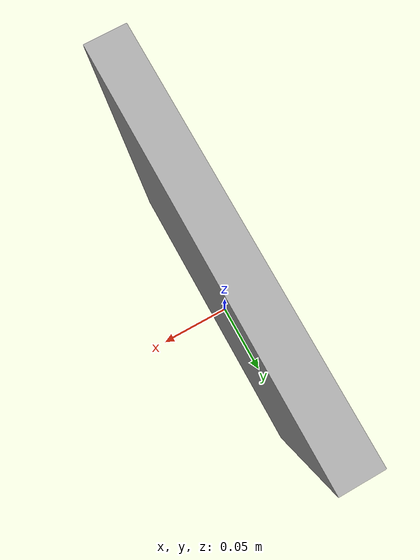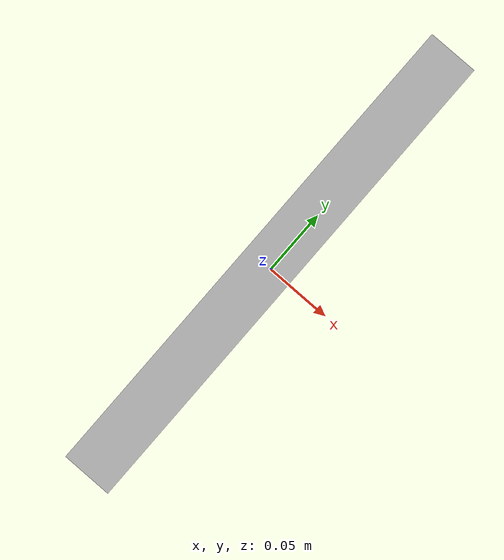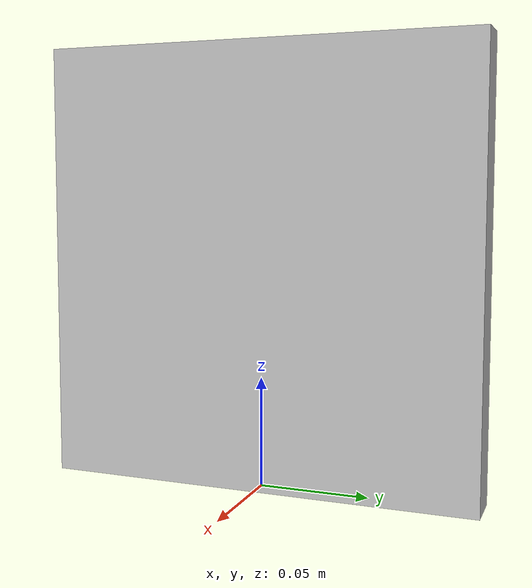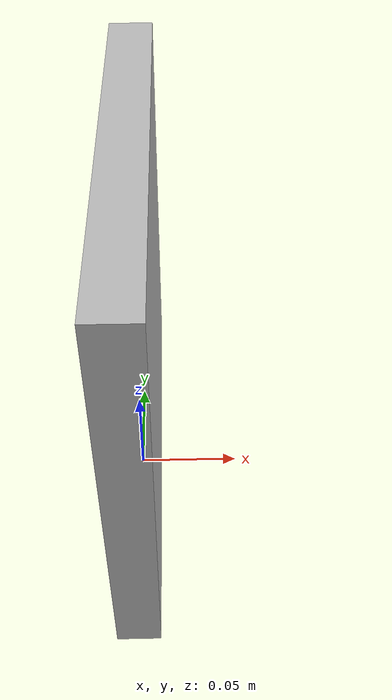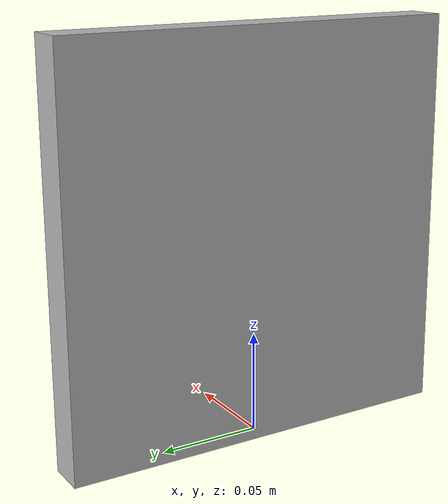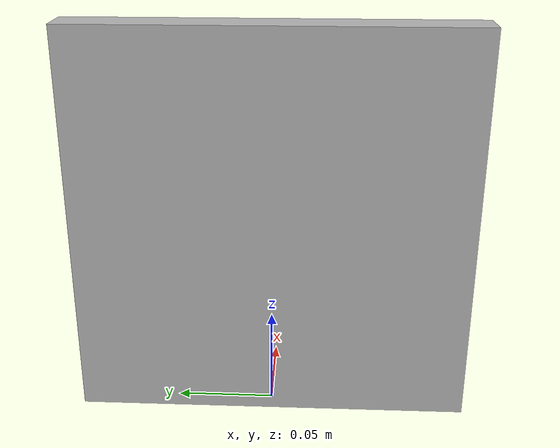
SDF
<?xml version="1.0" ?>
<sdf version="1.5">
  <model name="ArUco 0">
    <pose>0 0 0.1 0 0 0</pose>
    <static>true</static>
    <link name="link">
      <inertial>
        <mass>0.1</mass>
        <inertia>
          <ixx>1</ixx>
          <ixy>0</ixy>
          <ixz>0</ixz>
          <iyy>1</iyy>
          <iyz>0</iyz>
          <izz>1</izz>
        </inertia>
      </inertial>
      <collision name="collision">
        <geometry>
          <box>
            <size>0.02 0.2 0.2</size>
          </box>
        </geometry>
        <surface>
          <contact>
            <ode>
              <max_vel>0.1</max_vel>
              <min_depth>0.001</min_depth>
            </ode>
          </contact>
        </surface>
      </collision>
      <visual name="visual">
        <geometry>
          <mesh>
            <uri>model://ArUco_0/meshes/4x4_1000-0.dae</uri>
          </mesh>
        </geometry>
      </visual>
    </link>
  </model>
</sdf>
